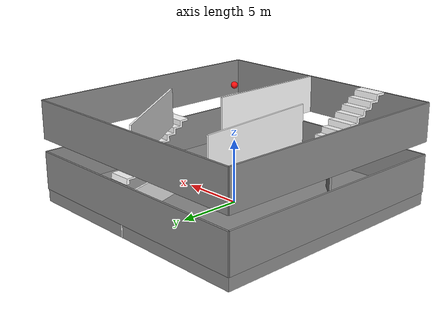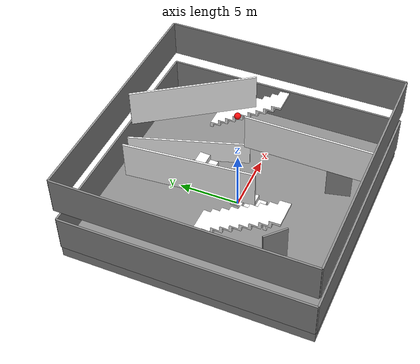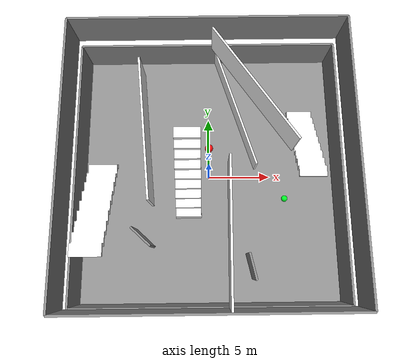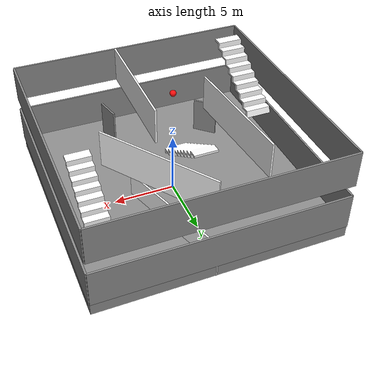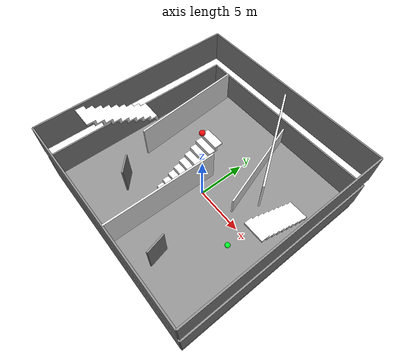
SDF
<sdf version="1.10">
 <world name="warehouse_predict_world">
  <plugin name="gz::sim::systems::Physics" filename="gz-sim-physics-system"/>
  <plugin name="gz::sim::systems::UserCommands" filename="gz-sim-user-commands-system"/>
  <plugin name="gz::sim::systems::SceneBroadcaster" filename="gz-sim-scene-broadcaster-system"/>
  <plugin name="DynamicWorldCloud" filename="DynamicWorldCloud">
   <point_spacing>0.25</point_spacing>
   <update_rate>10</update_rate>
   <pcd_save_interval>0.0</pcd_save_interval>
   <publish_enabled>true</publish_enabled>
   <max_points_per_publish>50000</max_points_per_publish>
   <pcd_directory>./pcd</pcd_directory>
   <transport_topic>/world/dynamic_cloud</transport_topic>
  </plugin>
  <plugin name="RFOctreePathPlanner" filename="RFOctreePathPlanner">
   <transport_topic>/world/dynamic_cloud</transport_topic>
   <rf_model>models/random_forest_voxel_model.rf.txt</rf_model>
   <start>6,-2,1.2</start>
   <goal>0,0,9.2</goal>
   <max_depth>9</max_depth>
   <max_points>50000</max_points>
   <plan_hz>0.1</plan_hz>
   <line_radius>0.06</line_radius>
   <z_offset>0.10</z_offset>
   <block_probability>0.92</block_probability>
   <enable_obstacle_clearance>true</enable_obstacle_clearance>
   <obstacle_clearance_radius>0.2</obstacle_clearance_radius>
   <obstacle_clearance_z_tolerance>1.5</obstacle_clearance_z_tolerance>
   <block_edges_through_obstacles>true</block_edges_through_obstacles>
   <edge_obstacle_clearance_radius>0.03</edge_obstacle_clearance_radius>
   <endpoint_snap_radius>1.5</endpoint_snap_radius>
   <stair_connection_radius>1.25</stair_connection_radius>
   <constrain_stair_transitions>true</constrain_stair_transitions>
   <stair_endpoint_tolerance>0.6</stair_endpoint_tolerance>
   <stair_step_max_vertical>0.8</stair_step_max_vertical>
   <stair_floor_connection_max_vertical>1.2</stair_floor_connection_max_vertical>
   <max_non_stair_vertical_step>0.35</max_non_stair_vertical_step>
   <constrain_stair_exits_to_floor_levels>true</constrain_stair_exits_to_floor_levels>
   <stair_floor_exit_tolerance>0.45</stair_floor_exit_tolerance>
   <constrain_stair_direction>true</constrain_stair_direction>
   <stair_direction_dot_min>0.5</stair_direction_dot_min>
   <stair_entry_lateral_margin>0.25</stair_entry_lateral_margin>
   <stair_entry_forward_margin>0.55</stair_entry_forward_margin>
   <probability_weight>6</probability_weight>
   <vertical_weight>0.75</vertical_weight>
   <allow_cross_floor>true</allow_cross_floor>
   <floor_z>0</floor_z>
   <story_height>4</story_height>
   <floor_surface_offset>1</floor_surface_offset>
   <ceiling_offset>4</ceiling_offset>
  </plugin>
  <gravity>0 0 -9.8000000000000007</gravity>
  <magnetic_field>5.5644999999999998e-06 2.2875799999999999e-05 -4.2388400000000002e-05</magnetic_field>
  <atmosphere type="adiabatic"/>
  <physics type="ode">
   <max_step_size>0.001</max_step_size>
   <real_time_factor>1</real_time_factor>
   <real_time_update_rate>1000</real_time_update_rate>
  </physics>
  <scene>
   <ambient>0.400000006 0.400000006 0.400000006 1</ambient>
   <background>0.699999988 0.699999988 0.699999988 1</background>
   <shadows>true</shadows>
  </scene>
  <model name="floor_base">
   <static>true</static>
   <link name="body">
    <inertial>
     <mass>1</mass>
     <inertia><ixx>1</ixx><iyy>1</iyy><izz>1</izz><ixy>0</ixy><ixz>0</ixz><iyz>0</iyz></inertia>
    </inertial>
    <collision name="collision">
     <density>10</density>
     <geometry>
      <mesh optimization="convex_decomposition">
       <uri>file:///home/ruilun/project/navigation_project/gazebo/maps/models/floor_base/mesh.stl</uri>
      </mesh>
     </geometry>
    </collision>
    <visual name="visual">
     <geometry>
      <mesh><uri>file:///home/ruilun/project/navigation_project/gazebo/maps/models/floor_base/mesh.stl</uri></mesh>
     </geometry>
     <material>
      <ambient>0.449999988 0.449999988 0.449999988 1</ambient>
      <diffuse>0.550000012 0.550000012 0.550000012 1</diffuse>
      <specular>0.150000006 0.150000006 0.150000006 1</specular>
     </material>
    </visual>
   </link>
  </model>
  <model name="wall_20x0.15x3">
   <static>true</static>
   <link name="body">
    <inertial>
     <mass>1</mass>
     <inertia><ixx>1</ixx><iyy>1</iyy><izz>1</izz><ixy>0</ixy><ixz>0</ixz><iyz>0</iyz></inertia>
    </inertial>
    <collision name="collision">
     <density>10</density>
     <geometry>
      <mesh optimization="convex_decomposition">
       <uri>file:///home/ruilun/project/navigation_project/gazebo/maps/models/wall_20x0.15x3/mesh.stl</uri>
      </mesh>
     </geometry>
    </collision>
    <visual name="visual">
     <geometry>
      <mesh>
       <uri>file:///home/ruilun/project/navigation_project/gazebo/maps/models/wall_20x0.15x3/mesh.stl</uri>
      </mesh>
     </geometry>
     <material>
      <ambient>0.449999988 0.449999988 0.449999988 1</ambient>
      <diffuse>0.550000012 0.550000012 0.550000012 1</diffuse>
      <specular>0.150000006 0.150000006 0.150000006 1</specular>
     </material>
    </visual>
   </link>
   <pose>0 10 1 0 0 0</pose>
  </model>
  <model name="wall_20x0.15x3_0">
   <static>true</static>
   <link name="body">
    <inertial>
     <mass>1</mass>
     <inertia><ixx>1</ixx><iyy>1</iyy><izz>1</izz><ixy>0</ixy><ixz>0</ixz><iyz>0</iyz></inertia>
    </inertial>
    <collision name="collision">
     <density>10</density>
     <geometry>
      <mesh optimization="convex_decomposition">
       <uri>file:///home/ruilun/project/navigation_project/gazebo/maps/models/wall_20x0.15x3/mesh.stl</uri>
      </mesh>
     </geometry>
    </collision>
    <visual name="visual">
     <geometry>
      <mesh>
       <uri>file:///home/ruilun/project/navigation_project/gazebo/maps/models/wall_20x0.15x3/mesh.stl</uri>
      </mesh>
     </geometry>
     <material>
      <ambient>0.449999988 0.449999988 0.449999988 1</ambient>
      <diffuse>0.550000012 0.550000012 0.550000012 1</diffuse>
      <specular>0.150000006 0.150000006 0.150000006 1</specular>
     </material>
    </visual>
   </link>
   <pose>-10 0 1 0 0 1.5699999999999998</pose>
  </model>
  <model name="wall_20x0.15x3_1">
   <static>true</static>
   <link name="body">
    <inertial>
     <mass>1</mass>
     <inertia><ixx>1</ixx><iyy>1</iyy><izz>1</izz><ixy>0</ixy><ixz>0</ixz><iyz>0</iyz></inertia>
    </inertial>
    <collision name="collision">
     <density>10</density>
     <geometry>
      <mesh optimization="convex_decomposition">
       <uri>file:///home/ruilun/project/navigation_project/gazebo/maps/models/wall_20x0.15x3/mesh.stl</uri>
      </mesh>
     </geometry>
    </collision>
    <visual name="visual">
     <geometry>
      <mesh>
       <uri>file:///home/ruilun/project/navigation_project/gazebo/maps/models/wall_20x0.15x3/mesh.stl</uri>
      </mesh>
     </geometry>
     <material>
      <ambient>0.449999988 0.449999988 0.449999988 1</ambient>
      <diffuse>0.550000012 0.550000012 0.550000012 1</diffuse>
      <specular>0.150000006 0.150000006 0.150000006 1</specular>
     </material>
    </visual>
   </link>
   <pose>10 0 1 0 0 1.5699999999999998</pose>
  </model>
  <model name="wall_20x0.15x3_2">
   <static>true</static>
   <link name="body">
    <inertial>
     <mass>1</mass>
     <inertia><ixx>1</ixx><iyy>1</iyy><izz>1</izz><ixy>0</ixy><ixz>0</ixz><iyz>0</iyz></inertia>
    </inertial>
    <collision name="collision">
     <density>10</density>
     <geometry>
      <mesh optimization="convex_decomposition">
       <uri>file:///home/ruilun/project/navigation_project/gazebo/maps/models/wall_20x0.15x3/mesh.stl</uri>
      </mesh>
     </geometry>
    </collision>
    <visual name="visual">
     <geometry>
      <mesh>
       <uri>file:///home/ruilun/project/navigation_project/gazebo/maps/models/wall_20x0.15x3/mesh.stl</uri>
      </mesh>
     </geometry>
     <material>
      <ambient>0.449999988 0.449999988 0.449999988 1</ambient>
      <diffuse>0.550000012 0.550000012 0.550000012 1</diffuse>
      <specular>0.150000006 0.150000006 0.150000006 1</specular>
     </material>
    </visual>
   </link>
   <pose>0 -10 1 0 0 0</pose>
  </model>
  <model name="wall_20x0.15x3_3">
   <static>true</static>
   <link name="body">
    <inertial>
     <mass>1</mass>
     <inertia><ixx>1</ixx><iyy>1</iyy><izz>1</izz><ixy>0</ixy><ixz>0</ixz><iyz>0</iyz></inertia>
    </inertial>
    <collision name="collision">
     <density>10</density>
     <geometry>
      <mesh optimization="convex_decomposition">
       <uri>file:///home/ruilun/project/navigation_project/gazebo/maps/models/wall_20x0.15x3/mesh.stl</uri>
      </mesh>
     </geometry>
    </collision>
    <visual name="visual">
     <geometry>
      <mesh>
       <uri>file:///home/ruilun/project/navigation_project/gazebo/maps/models/wall_20x0.15x3/mesh.stl</uri>
      </mesh>
     </geometry>
     <material>
      <ambient>0.449999988 0.449999988 0.449999988 1</ambient>
      <diffuse>0.550000012 0.550000012 0.550000012 1</diffuse>
      <specular>0.150000006 0.150000006 0.150000006 1</specular>
     </material>
    </visual>
   </link>
   <pose>10 0 5 0 0 1.5699999999999998</pose>
  </model>
  <model name="wall_20x0.15x3_4">
   <static>true</static>
   <link name="body">
    <inertial>
     <mass>1</mass>
     <inertia><ixx>1</ixx><iyy>1</iyy><izz>1</izz><ixy>0</ixy><ixz>0</ixz><iyz>0</iyz></inertia>
    </inertial>
    <collision name="collision">
     <density>10</density>
     <geometry>
      <mesh optimization="convex_decomposition">
       <uri>file:///home/ruilun/project/navigation_project/gazebo/maps/models/wall_20x0.15x3/mesh.stl</uri>
      </mesh>
     </geometry>
    </collision>
    <visual name="visual">
     <geometry>
      <mesh>
       <uri>file:///home/ruilun/project/navigation_project/gazebo/maps/models/wall_20x0.15x3/mesh.stl</uri>
      </mesh>
     </geometry>
     <material>
      <ambient>0.449999988 0.449999988 0.449999988 1</ambient>
      <diffuse>0.550000012 0.550000012 0.550000012 1</diffuse>
      <specular>0.150000006 0.150000006 0.150000006 1</specular>
     </material>
    </visual>
   </link>
   <pose>0 -10 5 0 0 0</pose>
  </model>
  <model name="wall_20x0.15x3_5">
   <static>true</static>
   <link name="body">
    <inertial>
     <mass>1</mass>
     <inertia><ixx>1</ixx><iyy>1</iyy><izz>1</izz><ixy>0</ixy><ixz>0</ixz><iyz>0</iyz></inertia>
    </inertial>
    <collision name="collision">
     <density>10</density>
     <geometry>
      <mesh optimization="convex_decomposition">
       <uri>file:///home/ruilun/project/navigation_project/gazebo/maps/models/wall_20x0.15x3/mesh.stl</uri>
      </mesh>
     </geometry>
    </collision>
    <visual name="visual">
     <geometry>
      <mesh>
       <uri>file:///home/ruilun/project/navigation_project/gazebo/maps/models/wall_20x0.15x3/mesh.stl</uri>
      </mesh>
     </geometry>
     <material>
      <ambient>0.449999988 0.449999988 0.449999988 1</ambient>
      <diffuse>0.550000012 0.550000012 0.550000012 1</diffuse>
      <specular>0.150000006 0.150000006 0.150000006 1</specular>
     </material>
    </visual>
   </link>
   <pose>0 10 5 0 0 0</pose>
  </model>
  <model name="wall_20x0.15x3_6">
   <static>true</static>
   <link name="body">
    <inertial>
     <mass>1</mass>
     <inertia><ixx>1</ixx><iyy>1</iyy><izz>1</izz><ixy>0</ixy><ixz>0</ixz><iyz>0</iyz></inertia>
    </inertial>
    <collision name="collision">
     <density>10</density>
     <geometry>
      <mesh optimization="convex_decomposition">
       <uri>file:///home/ruilun/project/navigation_project/gazebo/maps/models/wall_20x0.15x3/mesh.stl</uri>
      </mesh>
     </geometry>
    </collision>
    <visual name="visual">
     <geometry>
      <mesh>
       <uri>file:///home/ruilun/project/navigation_project/gazebo/maps/models/wall_20x0.15x3/mesh.stl</uri>
      </mesh>
     </geometry>
     <material>
      <ambient>0.449999988 0.449999988 0.449999988 1</ambient>
      <diffuse>0.550000012 0.550000012 0.550000012 1</diffuse>
      <specular>0.150000006 0.150000006 0.150000006 1</specular>
     </material>
    </visual>
   </link>
   <pose>-10 0 5 0 0 1.5699999999999998</pose>
  </model>
  <model name="stair_0">
   <link name="body">
    <inertial auto="true">
     <pose>0.35411018906933978 -0.0082306302323391818 2.078330947444432 0 0 0</pose>
     <mass>51.961508697365396</mass>
     <inertia>
      <ixx>93.511406514567909</ixx>
      <ixy>-0.11250304613580471</ixy>
      <ixz>112.40059211400526</ixz>
      <iyy>245.315980301927</iyy>
      <iyz>0.076632425716615937</iyz>
      <izz>186.77686255775899</izz>
     </inertia>
    </inertial>
    <collision name="collision">
     <density>10</density>
     <geometry>
      <mesh optimization="convex_decomposition">
       <uri>file:///home/ruilun/project/navigation_project/gazebo/maps/models/stair/mesh.stl</uri>
      </mesh>
     </geometry>
    </collision>
    <visual name="visual">
     <geometry>
      <mesh><uri>file:///home/ruilun/project/navigation_project/gazebo/maps/models/stair/mesh.stl</uri></mesh>
     </geometry>
     <material>
      <ambient>1 1 1 1</ambient>
      <diffuse>1 1 1 1</diffuse>
      <specular>0.200000003 0.200000003 0.200000003 1</specular>
     </material>
    </visual>
   </link>
   <pose>-7.4793915294818838 -3.3326081104876644 5.0600496248704578 0.0024011099787763059 -0.057285295271128134 1.5675077557529422</pose>
   <static>false</static>
  </model>
  <model name="stair">
   <link name="body">
    <inertial auto="true">
     <pose>0.35411018906933978 -0.0082306302323391818 2.078330947444432 0 0 0</pose>
     <mass>51.961508697365396</mass>
     <inertia>
      <ixx>93.511406514567909</ixx>
      <ixy>-0.11250304613580471</ixy>
      <ixz>112.40059211400526</ixz>
      <iyy>245.315980301927</iyy>
      <iyz>0.076632425716615937</iyz>
      <izz>186.77686255775899</izz>
     </inertia>
    </inertial>
    <collision name="collision">
     <density>10</density>
     <geometry>
      <mesh optimization="convex_decomposition">
       <uri>file:///home/ruilun/project/navigation_project/gazebo/maps/models/stair/mesh.stl</uri>
      </mesh>
     </geometry>
    </collision>
    <visual name="visual">
     <geometry>
      <mesh><uri>file:///home/ruilun/project/navigation_project/gazebo/maps/models/stair/mesh.stl</uri></mesh>
     </geometry>
     <material>
      <ambient>1 1 1 1</ambient>
      <diffuse>1 1 1 1</diffuse>
      <specular>0.200000003 0.200000003 0.200000003 1</specular>
     </material>
    </visual>
   </link>
   <pose>-1.6401246595015551 -0.1824827066762881 0.93628507244676262 -0.009972265898030264 0.0047884171660616598 -1.5708328815188968</pose>
   <static>false</static>
  </model>
  <model name="stair_1">
   <link name="body">
    <inertial auto="true">
     <pose>0.35411018906933978 -0.0082306302323391818 2.078330947444432 0 0 0</pose>
     <mass>51.961508697365396</mass>
     <inertia>
      <ixx>93.511406514567909</ixx>
      <ixy>-0.11250304613580471</ixy>
      <ixz>112.40059211400526</ixz>
      <iyy>245.315980301927</iyy>
      <iyz>0.076632425716615937</iyz>
      <izz>186.77686255775899</izz>
     </inertia>
    </inertial>
    <collision name="collision">
     <density>10</density>
     <geometry>
      <mesh optimization="convex_decomposition">
       <uri>file:///home/ruilun/project/navigation_project/gazebo/maps/models/stair/mesh.stl</uri>
      </mesh>
     </geometry>
    </collision>
    <visual name="visual">
     <geometry>
      <mesh><uri>file:///home/ruilun/project/navigation_project/gazebo/maps/models/stair/mesh.stl</uri></mesh>
     </geometry>
     <material>
      <ambient>1 1 1 1</ambient>
      <diffuse>1 1 1 1</diffuse>
      <specular>0.200000003 0.200000003 0.200000003 1</specular>
     </material>
    </visual>
   </link>
   <pose>7.5003327933831878 2.0151546063291215 0.93333382681673083 1.3219117857066957e-08 -0.0050807321703286879 1.5696779526441456</pose>
   <static>false</static>
  </model>
  <model name="wall_10x0.15x3">
   <static>true</static>
   <link name="body">
    <inertial>
     <mass>1</mass>
     <inertia><ixx>1</ixx><iyy>1</iyy><izz>1</izz><ixy>0</ixy><ixz>0</ixz><iyz>0</iyz></inertia>
    </inertial>
    <collision name="collision">
     <density>10</density>
     <geometry>
      <mesh optimization="convex_decomposition">
       <uri>file:///home/ruilun/project/navigation_project/gazebo/maps/models/wall_10x0.15x3/mesh.stl</uri>
      </mesh>
     </geometry>
    </collision>
    <visual name="visual">
     <geometry>
      <mesh>
       <uri>file:///home/ruilun/project/navigation_project/gazebo/maps/models/wall_10x0.15x3/mesh.stl</uri>
      </mesh>
     </geometry>
     <material>
      <ambient>1 1 1 1</ambient>
      <diffuse>1 1 1 1</diffuse>
      <specular>0.200000003 0.200000003 0.200000003 1</specular>
     </material>
    </visual>
   </link>
   <pose>2.1762999999999999 5.24411 0 0 0 -1.2614100000000001</pose>
  </model>
  <model name="wall_2x0.15x3_0">
   <static>true</static>
   <link name="body">
    <inertial>
     <mass>1</mass>
     <inertia><ixx>1</ixx><iyy>1</iyy><izz>1</izz><ixy>0</ixy><ixz>0</ixz><iyz>0</iyz></inertia>
    </inertial>
    <collision name="collision">
     <density>10</density>
     <geometry>
      <mesh optimization="convex_decomposition">
       <uri>file:///home/ruilun/project/navigation_project/gazebo/maps/models/wall_2x0.15x3/mesh.stl</uri>
      </mesh>
     </geometry>
    </collision>
    <visual name="visual">
     <geometry>
      <mesh>
       <uri>file:///home/ruilun/project/navigation_project/gazebo/maps/models/wall_2x0.15x3/mesh.stl</uri>
      </mesh>
     </geometry>
     <material>
      <ambient>0.449999988 0.449999988 0.449999988 1</ambient>
      <diffuse>0.550000012 0.550000012 0.550000012 1</diffuse>
      <specular>0.150000006 0.150000006 0.150000006 1</specular>
     </material>
    </visual>
   </link>
   <pose>3.08229 -7.2313799999999997 1 0 0 -1.3428</pose>
  </model>
  <model name="wall_2x0.15x3_1">
   <static>true</static>
   <link name="body">
    <inertial>
     <mass>1</mass>
     <inertia><ixx>1</ixx><iyy>1</iyy><izz>1</izz><ixy>0</ixy><ixz>0</ixz><iyz>0</iyz></inertia>
    </inertial>
    <collision name="collision">
     <density>10</density>
     <geometry>
      <mesh optimization="convex_decomposition">
       <uri>file:///home/ruilun/project/navigation_project/gazebo/maps/models/wall_2x0.15x3/mesh.stl</uri>
      </mesh>
     </geometry>
    </collision>
    <visual name="visual">
     <geometry>
      <mesh>
       <uri>file:///home/ruilun/project/navigation_project/gazebo/maps/models/wall_2x0.15x3/mesh.stl</uri>
      </mesh>
     </geometry>
     <material>
      <ambient>0.449999988 0.449999988 0.449999988 1</ambient>
      <diffuse>0.550000012 0.550000012 0.550000012 1</diffuse>
      <specular>0.150000006 0.150000006 0.150000006 1</specular>
     </material>
    </visual>
   </link>
   <pose>-5.0164900000000001 -5.04467 1 0 0 -0.75180899999999973</pose>
  </model>
  <model name="wall_10x0.15x3_0">
   <static>true</static>
   <link name="body">
    <inertial>
     <mass>1</mass>
     <inertia><ixx>1</ixx><iyy>1</iyy><izz>1</izz><ixy>0</ixy><ixz>0</ixz><iyz>0</iyz></inertia>
    </inertial>
    <collision name="collision">
     <density>10</density>
     <geometry>
      <mesh optimization="convex_decomposition">
       <uri>file:///home/ruilun/project/navigation_project/gazebo/maps/models/wall_10x0.15x3/mesh.stl</uri>
      </mesh>
     </geometry>
    </collision>
    <visual name="visual">
     <geometry>
      <mesh>
       <uri>file:///home/ruilun/project/navigation_project/gazebo/maps/models/wall_10x0.15x3/mesh.stl</uri>
      </mesh>
     </geometry>
     <material>
      <ambient>1 1 1 1</ambient>
      <diffuse>1 1 1 1</diffuse>
      <specular>0.200000003 0.200000003 0.200000003 1</specular>
     </material>
    </visual>
   </link>
   <pose>1.3673999999999999 -4.9922000000000004 5 0 0 -1.5793000000000001</pose>
  </model>
  <model name="wall_10x0.15x3_1">
   <static>true</static>
   <link name="body">
    <inertial>
     <mass>1</mass>
     <inertia><ixx>1</ixx><iyy>1</iyy><izz>1</izz><ixy>0</ixy><ixz>0</ixz><iyz>0</iyz></inertia>
    </inertial>
    <collision name="collision">
     <density>10</density>
     <geometry>
      <mesh optimization="convex_decomposition">
       <uri>file:///home/ruilun/project/navigation_project/gazebo/maps/models/wall_10x0.15x3/mesh.stl</uri>
      </mesh>
     </geometry>
    </collision>
    <visual name="visual">
     <geometry>
      <mesh>
       <uri>file:///home/ruilun/project/navigation_project/gazebo/maps/models/wall_10x0.15x3/mesh.stl</uri>
      </mesh>
     </geometry>
     <material>
      <ambient>1 1 1 1</ambient>
      <diffuse>1 1 1 1</diffuse>
      <specular>0.200000003 0.200000003 0.200000003 1</specular>
     </material>
    </visual>
   </link>
   <pose>-4.3754 1.9657 5 0 0 -1.4886000000000006</pose>
  </model>
  <model name="wall_10x0.15x3_2">
   <static>true</static>
   <link name="body">
    <inertial>
     <mass>1</mass>
     <inertia><ixx>1</ixx><iyy>1</iyy><izz>1</izz><ixy>0</ixy><ixz>0</ixz><iyz>0</iyz></inertia>
    </inertial>
    <collision name="collision">
     <density>10</density>
     <geometry>
      <mesh optimization="convex_decomposition">
       <uri>file:///home/ruilun/project/navigation_project/gazebo/maps/models/wall_10x0.15x3/mesh.stl</uri>
      </mesh>
     </geometry>
    </collision>
    <visual name="visual">
     <geometry>
      <mesh>
       <uri>file:///home/ruilun/project/navigation_project/gazebo/maps/models/wall_10x0.15x3/mesh.stl</uri>
      </mesh>
     </geometry>
     <material>
      <ambient>1 1 1 1</ambient>
      <diffuse>1 1 1 1</diffuse>
      <specular>0.200000003 0.200000003 0.200000003 1</specular>
     </material>
    </visual>
   </link>
   <pose>3.2185516357421875 5.0734515190124512 5 0 0 -0.96370000565484093</pose>
  </model>
  <model name="start_marker">
   <static>true</static>
   <pose>6 -2 1.2 0 0 0</pose>
   <link name="body">
    <visual name="visual">
     <geometry><sphere><radius>0.25</radius></sphere></geometry>
     <material>
      <ambient>0 1 0.150000006 1</ambient>
      <diffuse>0 1 0.150000006 1</diffuse>
      <specular>0.100000001 0.400000006 0.100000001 1</specular>
     </material>
    </visual>
    <inertial>
     <mass>1</mass>
     <inertia><ixx>1</ixx><ixy>0</ixy><ixz>0</ixz><iyy>1</iyy><iyz>0</iyz><izz>1</izz></inertia>
    </inertial>
   </link>
  </model>
  <model name="goal_marker">
   <static>true</static>
   <pose>0 0 9.1999999999999993 0 0 0</pose>
   <link name="body">
    <visual name="visual">
     <geometry><sphere><radius>0.25</radius></sphere></geometry>
     <material>
      <ambient>1 0.0500000007 0.0500000007 1</ambient>
      <diffuse>1 0.0500000007 0.0500000007 1</diffuse>
      <specular>0.400000006 0.100000001 0.100000001 1</specular>
     </material>
    </visual>
    <inertial>
     <mass>1</mass>
     <inertia><ixx>1</ixx><ixy>0</ixy><ixz>0</ixz><iyy>1</iyy><iyz>0</iyz><izz>1</izz></inertia>
    </inertial>
   </link>
  </model>
  <light name="sun" type="directional">
   <pose>0 0 10 0 0 0</pose>
   <intensity>1</intensity>
   <direction>-0.5 0.10000000000000001 -0.90000000000000002</direction>
   <diffuse>0.800000012 0.800000012 0.800000012 1</diffuse>
   <specular>0.200000003 0.200000003 0.200000003 1</specular>
   <attenuation>
    <range>1000</range>
    <linear>0.0099999997764825821</linear>
    <constant>0.89999997615814209</constant>
    <quadratic>0.0010000000474974513</quadratic>
   </attenuation>
   <spot><inner_angle>0</inner_angle><outer_angle>0</outer_angle><falloff>0</falloff></spot>
  </light>
 </world>
</sdf>
